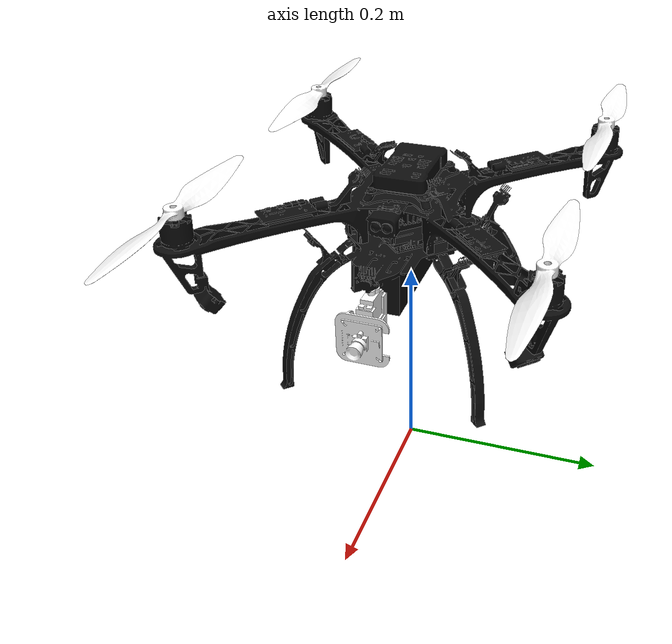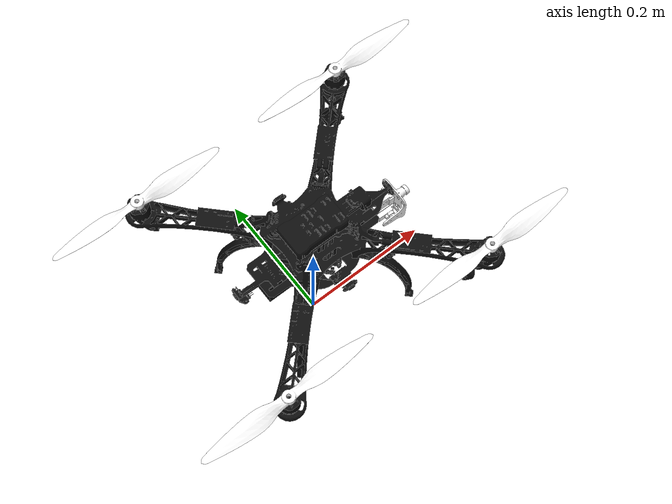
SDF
<sdf version="1.10">
 <world name="open_world">
  <physics name="1ms" type="ignore">
   <max_step_size>0.001</max_step_size>
   <real_time_factor>1</real_time_factor>
   <real_time_update_rate>1000</real_time_update_rate>
  </physics>
  <plugin name="gz::sim::systems::Physics" filename="gz-sim-physics-system"/>
  <plugin name="gz::sim::systems::Sensors" filename="gz-sim-sensors-system">
   <render_engine>ogre2</render_engine>
  </plugin>
  <plugin name="gz::sim::systems::UserCommands" filename="gz-sim-user-commands-system"/>
  <plugin name="gz::sim::systems::SceneBroadcaster" filename="gz-sim-scene-broadcaster-system"/>
  <plugin name="gz::sim::systems::Imu" filename="gz-sim-imu-system"/>
  <plugin name="gz::sim::systems::NavSat" filename="gz-sim-navsat-system"/>
  <scene>
   <ambient>1 1 1 1</ambient>
   <background>0.800000012 0.800000012 0.800000012 1</background>
   <shadows>0</shadows>
   <grid>false</grid>
   <origin_visual>false</origin_visual>
  </scene>
  <gravity>0 0 -9.8000000000000007</gravity>
  <magnetic_field>5.5644999999999998e-06 2.2875799999999999e-05 -4.2388400000000002e-05</magnetic_field>
  <atmosphere type="adiabatic"/>
  <light name="sun" type="directional">
   <pose>0 0 10 0 0 0</pose>
   <intensity>1</intensity>
   <direction>-0.5 0.10000000000000001 -0.90000000000000002</direction>
   <diffuse>0.800000012 0.800000012 0.800000012 1</diffuse>
   <specular>0.800000012 0.800000012 0.800000012 1</specular>
   <attenuation>
    <range>1000</range>
    <linear>0.01</linear>
    <constant>0.90000000000000002</constant>
    <quadratic>0.001</quadratic>
   </attenuation>
   <spot><inner_angle>0</inner_angle><outer_angle>0</outer_angle><falloff>0</falloff></spot>
  </light>
  <include><uri>model://kestrel_drone</uri></include>
 </world>
</sdf>

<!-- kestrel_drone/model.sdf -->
<sdf version="1.9">
    <model name='kestrel_drone'>
        <pose>0 0 0.25 0 0 0</pose>
        <link name='base_link'>
        <velocity_decay>
            <linear>0.0</linear>
            <angular>0.0</angular>
        </velocity_decay>
        <inertial>
            <pose>0.008 -0.0003 0.006 0 0 0</pose>
            <mass>1.6</mass>
            <inertia>
            <ixx>0.0055</ixx>
            <ixy>0</ixy>
            <ixz>0</ixz>
            <iyy>0.0067</iyy>
            <iyz>0</iyz>
            <izz>0.0099</izz>
            </inertia>
        </inertial>
        <collision name='base_link_collision'>
            <pose>0 0 0 0 0 0</pose>
            <geometry>
            <box>
                <size>0.358541 0.358541 0.212</size>
            </box>
            </geometry>
            <surface>
            <contact>
                <ode>
                <max_vel>100.0</max_vel>
                <min_depth>0.001</min_depth>
                </ode>
            </contact>
            <friction>
                <ode>
                <mu>100000.0</mu>
                <mu2>100000.0</mu2>
                </ode>
            </friction>
            </surface>
        </collision>
        <visual name='base_link_visual'>
            <pose>0 0 0 0 0 0</pose>
            <geometry>
                <mesh>
                    <scale>1 1 1</scale>
                    <uri>model://kestrel_drone/meshes/base_link.STL</uri>
                </mesh>
            </geometry>
            <material>
                <ambient>0.05 0.05 0.05</ambient>
                <diffuse>0.05 0.05 0.05</diffuse>
                <specular>1 1 1 1</specular>
                <pbr>
                    <metal>
                        <metalness>0.5</metalness>
                        <roughness>0.5</roughness>
                    </metal>
                </pbr>
            </material>
        </visual>
        </link>
        <joint name='CameraPt1-joint' type='revolute'>
        <pose relative_to='base_link'>0.1087 0 -0.051799999999999999 0 0 -0.016688999999999996</pose>
        <parent>base_link</parent>
        <child>CameraPt1</child>
        <axis>
            <xyz>0 0 1</xyz>
            <limit>
            <effort>1.4710000000000001</effort>
            <velocity>5.2359999999999998</velocity>
            <lower>0</lower>
            <upper>3.1415</upper>
            </limit>
            <dynamics>
                <spring_reference>0</spring_reference>
                <spring_stiffness>0</spring_stiffness>
            </dynamics>
        </axis>
        </joint>
        <link name='CameraPt1'>
        <pose relative_to='CameraPt1-joint'>0 0 0 0 0 0</pose>
        <inertial>
            <pose>-0.10077 -0.0019816999999999999 0.058075000000000002 0 0 0</pose>
            <mass>0.01</mass>
            <inertia>
            <ixx>0.0054891000000000002</ixx>
            <ixy>-1.2663000000000001e-05</ixy>
            <ixz>0.00018552999999999999</ixz>
            <iyy>0.0066689999999999996</iyy>
            <iyz>1.8978000000000001e-06</iyz>
            <izz>0.0098706999999999996</izz>
            </inertia>
        </inertial>
        <collision name='CameraPt1_collision'>
            <pose>0 0 0 0 0 0</pose>
            <geometry>
            <mesh>
                <scale>1 1 1</scale>
                <uri>model://kestrel_drone/meshes/CameraPt1.STL</uri>
            </mesh>
            </geometry>
        </collision>
        <visual name='CameraPt1_visual'>
            <pose>0 0 0 0 0 0</pose>
            <geometry>
            <mesh>
                <scale>1 1 1</scale>
                <uri>model://kestrel_drone/meshes/CameraPt1.STL</uri>
            </mesh>
            </geometry>
            <material>
                <diffuse>1 1 1 1</diffuse>
                <ambient>1 1 1 1</ambient>
                <pbr>
                    <metal>
                        <metalness>0.5</metalness>
                        <roughness>0.5</roughness>
                    </metal>
                </pbr>
            </material>
        </visual>
        </link>
        <joint name='CameraPt2-joint' type='revolute'>
        <pose relative_to='CameraPt1'>0.011849999999999999 0 0.0079000000000000008 0 0.0053803999999999996 0</pose>
        <parent>CameraPt1</parent>
        <child>CameraPt2</child>
        <axis>
            <xyz>0 -1 0</xyz>
            <limit>
            <effort>1.571</effort>
            <velocity>5.236</velocity>
            <lower>-1.5708</lower>
            <upper>0</upper>
            </limit>
            <dynamics>
            <spring_reference>0</spring_reference>
            <spring_stiffness>0</spring_stiffness>
            </dynamics>
        </axis>
        </joint>
        <link name='CameraPt2'>
        <pose relative_to='CameraPt2-joint'>0 0 0 0 0 0</pose>
        <inertial>
            <pose>-0.11289 -0.0019816999999999999 0.049568000000000001 0 0 0</pose>
            <mass>0.01</mass>
            <inertia>
            <ixx>0.0054872000000000002</ixx>
            <ixy>-1.2673e-05</ixy>
            <ixz>0.00016194000000000001</ixz>
            <iyy>0.0066689999999999996</iyy>
            <iyz>1.8296e-06</iyz>
            <izz>0.0098724999999999993</izz>
            </inertia>
        </inertial>
        <collision name='CameraPt2_collision'>
            <pose>0 0 0 0 0 0</pose>
            <geometry>
            <mesh>
                <scale>1 1 1</scale>
                <uri>model://kestrel_drone/meshes/CameraPt2.STL</uri>
            </mesh>
            </geometry>
        </collision>
        <visual name='CameraPt2_visual'>
            <pose>0 0 0 0 0 0</pose>
            <geometry>
            <mesh>
                <scale>1 1 1</scale>
                <uri>model://kestrel_drone/meshes/CameraPt2.STL</uri>
            </mesh>
            </geometry>
            <material>
                <diffuse>1 1 1 1</diffuse>
                <ambient>1 1 1 1</ambient>
                <pbr>
                    <metal>
                        <metalness>0.5</metalness>
                        <roughness>0.5</roughness>
                    </metal>
                </pbr>
            </material>
        </visual>
        <sensor name="camera" type="camera">
            <pose>0 0 0 0 0 0</pose>
            <camera>
            <horizontal_fov>2.0</horizontal_fov>
            <image>
                <width>640</width>
                <height>480</height>
            </image>
            <clip>
                <near>0.05</near>
                <far>15000</far>
            </clip>
            </camera>
            <always_on>1</always_on>
            <update_rate>10</update_rate>
            <visualize>1</visualize>
            <topic>/camera/rgb/image_raw</topic>

            <plugin filename="CameraZoomPlugin"
                name="CameraZoomPlugin">
            <max_zoom>125.0</max_zoom>
            <slew_rate>0.42514285714</slew_rate>
            </plugin>

            <plugin name="GstCameraPlugin"
                filename="GstCameraPlugin">
            <udp_host>127.0.0.1</udp_host>
            <udp_port>5600</udp_port>
            <use_basic_pipeline>true</use_basic_pipeline>
            <use_cuda>false</use_cuda>
            </plugin>

        </sensor>

        </link>
        <joint name='Prop1-joint' type='revolute'>
            <pose relative_to='base_link'>0.15846 -0.15891 0.055962 0 0 0</pose>
            <parent>base_link</parent>
            <child>Prop1</child>
            <axis>
                <xyz>0 0 1</xyz>
                <limit>
                    <lower>-Inf</lower>
                    <upper>Inf</upper>
                </limit>
                <dynamics>
                    <damping>0.005</damping>
                </dynamics>
            </axis>
            <physics>
                <ode>
                <implicit_spring_damper>1</implicit_spring_damper>
                </ode>
            </physics>
        </joint>
        <link name='Prop1'>
            <pose relative_to='Prop1-joint'>0 0 0 0 0 0</pose>
            <inertial>
                <pose>-0.0000001705 0.0094872 -0.000012556 0 0 0</pose>
                <mass>0.025</mass>
                <inertia>
                    <ixx>9.75e-06</ixx>
                    <ixy>0</ixy>
                    <ixz>0</ixz>
                    <iyy>0.000166704</iyy>
                    <iyz>0</iyz>
                    <izz>0.000167604</izz>
                </inertia>
            </inertial>
            <collision name='Prop1_collision'>
                <pose>0 0 0 0 0 0</pose>
                <geometry>
                    <cylinder>
                        <length>0.005</length>
                        <radius>0.1</radius>
                    </cylinder>
                </geometry>
                <surface>
                <contact>
                    <ode/>
                </contact>
                <friction>
                    <ode/>
                </friction>
                </surface>
            </collision>
            <visual name='Prop1_visual'>
                <pose>0 0 0 0 0 0</pose>
                <geometry>
                    <mesh>
                        <scale>1 1 1</scale>
                        <uri>model://kestrel_drone/meshes/Prop1.STL</uri>
                    </mesh>
                </geometry>
                <material>
                <diffuse>1 1 1 1</diffuse>
                <ambient>1 1 1 1</ambient>
                <pbr>
                    <metal>
                        <metalness>0.5</metalness>
                        <roughness>0.5</roughness>
                    </metal>
                </pbr>
                </material>
            </visual>
            <gravity>1</gravity>
            <velocity_decay/>
            <self_collide>0</self_collide>
        </link>
        <joint name='Prop2-joint' type='revolute'>
            <pose relative_to='base_link'>-0.15846 0.15891 0.055962 0 0 0</pose>
            <parent>base_link</parent>
            <child>Prop2</child>
            <axis>
                <xyz>0 0 1</xyz>
                <limit>
                    <lower>-Inf</lower>
                    <upper>Inf</upper>
                </limit>
                <dynamics>
                    <damping>0.005</damping>
                </dynamics>
            </axis>
            <physics>
                <ode>
                <implicit_spring_damper>1</implicit_spring_damper>
                </ode>
            </physics>
        </joint>
        <link name='Prop2'>
            <pose relative_to='Prop2-joint'>0 0 0 0 0 0</pose>
            <inertial>
                <pose>-0.0000001705 0.0094872 -0.000012556 0 0 0</pose>
                <mass>0.025</mass>
                <inertia>
                    <ixx>9.75e-06</ixx>
                    <ixy>0</ixy>
                    <ixz>0</ixz>
                    <iyy>0.000166704</iyy>
                    <iyz>0</iyz>
                    <izz>0.000167604</izz>
                </inertia>
            </inertial>
            <collision name='Prop2_collision'>
                <pose>0 0 0 0 0 0</pose>
                <geometry>
                    <cylinder>
                        <length>0.005</length>
                        <radius>0.1</radius>
                    </cylinder>
                </geometry>
                <surface>
                <contact>
                    <ode/>
                </contact>
                <friction>
                    <ode/>
                </friction>
                </surface>
            </collision>
            <visual name='Prop2_visual'>
                <pose>0 0 0 0 0 0</pose>
                <geometry>
                <mesh>
                    <scale>1 1 1</scale>
                    <uri>model://kestrel_drone/meshes/Prop2.STL</uri>
                </mesh>
                </geometry>
                <material>
                <diffuse>1 1 1 1</diffuse>
                <ambient>1 1 1 1</ambient>
                <pbr>
                    <metal>
                        <metalness>0.5</metalness>
                        <roughness>0.5</roughness>
                    </metal>
                </pbr>
                </material>
            </visual>
            <gravity>1</gravity>
            <velocity_decay/>
            <self_collide>0</self_collide>
        </link>
        <joint name='Prop3-joint' type='revolute'>
            <pose relative_to='base_link'>0.15891 0.15846 0.055962 0 0 0</pose>
            <parent>base_link</parent>
            <child>Prop3</child>
            <axis>
                <xyz>0 0 1</xyz>
                <limit>
                    <lower>-Inf</lower>
                    <upper>Inf</upper>
                </limit>
                <dynamics>
                    <damping>0.005</damping>
                </dynamics>
            </axis>
            <physics>
                <ode>
                <implicit_spring_damper>1</implicit_spring_damper>
                </ode>
            </physics>
        </joint>
        <link name='Prop3'>
            <pose relative_to='Prop3-joint'>0 0 0 0 0 0</pose>
            <inertial>
                <pose>-0.0000001705 0.0094872 -0.000012556 0 0 0</pose>
                <mass>0.018153</mass>
                <mass>0.025</mass>
                <inertia>
                    <ixx>9.75e-06</ixx>
                    <ixy>0</ixy>
                    <ixz>0</ixz>
                    <iyy>0.000166704</iyy>
                    <iyz>0</iyz>
                    <izz>0.000167604</izz>
                </inertia>
            </inertial>
            <collision name='Prop3_collision'>
                <pose>0 0 0 0 0 0</pose>
                <geometry>
                    <cylinder>
                        <length>0.005</length>
                        <radius>0.1</radius>
                    </cylinder>
                </geometry>
                <surface>
                <contact>
                    <ode/>
                </contact>
                <friction>
                    <ode/>
                </friction>
                </surface>
            </collision>
            <visual name='Prop3_visual'>
                <pose>0 0 0 0 0 0</pose>
                <geometry>
                    <mesh>
                        <scale>1 1 1</scale>
                        <uri>model://kestrel_drone/meshes/Prop3.STL</uri>
                    </mesh>
                </geometry>
                <material>
                <diffuse>1 1 1 1</diffuse>
                <ambient>1 1 1 1</ambient>
                <pbr>
                    <metal>
                        <metalness>0.5</metalness>
                        <roughness>0.5</roughness>
                    </metal>
                </pbr>
                </material>
            </visual>
            <gravity>1</gravity>
            <velocity_decay/>
            <self_collide>0</self_collide>
        </link>
        <joint name='Prop4-joint' type='revolute'>
            <pose relative_to='base_link'>-0.15891 -0.15846 0.055962 0 0 0</pose>
            <parent>base_link</parent>
            <child>Prop4</child>
            <axis>
                <xyz>0 0 1</xyz>
                <limit>
                    <lower>-Inf</lower>
                    <upper>Inf</upper>
                </limit>
                <dynamics>
                    <damping>0.005</damping>
                </dynamics>
            </axis>
            <physics>
                <ode>
                <implicit_spring_damper>1</implicit_spring_damper>
                </ode>
            </physics>
        </joint>
        <link name='Prop4'>
        <pose relative_to='Prop4-joint'>0 0 0 0 0 0</pose>
        <inertial>
            <pose>-0.0000001705 0.0094872 -0.000012556 0 0 0</pose>
            <mass>0.025</mass>
            <inertia>
                <ixx>9.75e-06</ixx>
                <ixy>0</ixy>
                <ixz>0</ixz>
                <iyy>0.000166704</iyy>
                <iyz>0</iyz>
                <izz>0.000167604</izz>
            </inertia>
        </inertial>
        <collision name='Prop4_collision'>
            <pose>0 0 0 0 0 0</pose>
            <geometry>
                <cylinder>
                    <length>0.005</length>
                    <radius>0.1</radius>
                </cylinder>
            </geometry>
            <surface>
            <contact>
                <ode/>
            </contact>
            <friction>
                <ode/>
            </friction>
            </surface>
        </collision>
        <visual name='Prop4_visual'>
            <pose>0 0 0 0 0 0</pose>
            <geometry>
                <mesh>
                    <scale>1 1 1</scale>
                    <uri>model://kestrel_drone/meshes/Prop4.STL</uri>
                </mesh>
            </geometry>
            <material>
            <diffuse>1 1 1 1</diffuse>
            <ambient>1 1 1 1</ambient>
            <pbr>
                <metal>
                    <metalness>0.5</metalness>
                    <roughness>0.5</roughness>
                </metal>
            </pbr>
            </material>
        </visual>
        <gravity>1</gravity>
        <velocity_decay/>
        <self_collide>0</self_collide>
        </link>

        <link name='imu_link'>
            <inertial>
                <pose>0 0 0 0 0 0</pose>
                <mass>0.15</mass>
                <inertia>
                <ixx>0.00001</ixx>
                <ixy>0</ixy>
                <ixz>0</ixz>
                <iyy>0.00002</iyy>
                <iyz>0</iyz>
                <izz>0.00002</izz>
                </inertia>
            </inertial>
            <sensor name="imu_sensor" type="imu">
                <pose degrees="true">0 0 0 180 0 0</pose>
                <always_on>1</always_on>
                <update_rate>1000.0</update_rate>
            </sensor>
        </link>
        <joint name='imu_joint' type='revolute'>
            <child>imu_link</child>
            <parent>base_link</parent>
            <axis>
                <xyz>0 0 1</xyz>
                <limit>
                <lower>0</lower>
                <upper>0</upper>
                <effort>0</effort>
                <velocity>0</velocity>
                </limit>
                <dynamics>
                <damping>1.0</damping>
                </dynamics>
            </axis>
        </joint>

        <!-- PLUGINS -->
        <plugin filename="gz-sim-joint-state-publisher-system"
        name="gz::sim::systems::JointStatePublisher">
        </plugin>
        <plugin filename="gz-sim-lift-drag-system"
            name="gz::sim::systems::LiftDrag">
        <a0>0.3</a0>
        <alpha_stall>1.4</alpha_stall>
        <cla>4.2500</cla>
        <cda>0.10</cda>
        <cma>0.0</cma>
        <cla_stall>-0.025</cla_stall>
        <cda_stall>0.0</cda_stall>
        <cma_stall>0.0</cma_stall>
        <area>0.002</area>
        <air_density>1.2041</air_density>
        <cp>0.127 0 0</cp>
        <forward>0 1 0</forward>
        <upward>0 0 1</upward>
        <link_name>Prop1</link_name>
        </plugin>
        <plugin filename="gz-sim-lift-drag-system"
            name="gz::sim::systems::LiftDrag">
        <a0>0.3</a0>
        <alpha_stall>1.4</alpha_stall>
        <cla>4.2500</cla>
        <cda>0.10</cda>
        <cma>0.0</cma>
        <cla_stall>-0.025</cla_stall>
        <cda_stall>0.0</cda_stall>
        <cma_stall>0.0</cma_stall>
        <area>0.002</area>
        <air_density>1.2041</air_density>
        <cp>-0.127 0 0</cp>
        <forward>0 -1 0</forward>
        <upward>0 0 1</upward>
        <link_name>Prop1</link_name>
        </plugin>

        <plugin filename="gz-sim-lift-drag-system"
            name="gz::sim::systems::LiftDrag">
        <a0>0.3</a0>
        <alpha_stall>1.4</alpha_stall>
        <cla>4.2500</cla>
        <cda>0.10</cda>
        <cma>0.0</cma>
        <cla_stall>-0.025</cla_stall>
        <cda_stall>0.0</cda_stall>
        <cma_stall>0.0</cma_stall>
        <area>0.002</area>
        <air_density>1.2041</air_density>
        <cp>0.127 0 0</cp>
        <forward>0 1 0</forward>
        <upward>0 0 1</upward>
        <link_name>Prop2</link_name>
        </plugin>
        <plugin filename="gz-sim-lift-drag-system"
            name="gz::sim::systems::LiftDrag">
        <a0>0.3</a0>
        <alpha_stall>1.4</alpha_stall>
        <cla>4.2500</cla>
        <cda>0.10</cda>
        <cma>0.0</cma>
        <cla_stall>-0.025</cla_stall>
        <cda_stall>0.0</cda_stall>
        <cma_stall>0.0</cma_stall>
        <area>0.002</area>
        <air_density>1.2041</air_density>
        <cp>-0.127 0 0</cp>
        <forward>0 -1 0</forward>
        <upward>0 0 1</upward>
        <link_name>Prop2</link_name>
        </plugin>

        <plugin filename="gz-sim-lift-drag-system"
            name="gz::sim::systems::LiftDrag">
        <a0>0.3</a0>
        <alpha_stall>1.4</alpha_stall>
        <cla>4.2500</cla>
        <cda>0.10</cda>
        <cma>0.0</cma>
        <cla_stall>-0.025</cla_stall>
        <cda_stall>0.0</cda_stall>
        <cma_stall>0.0</cma_stall>
        <area>0.002</area>
        <air_density>1.2041</air_density>
        <cp>0.127 0 0</cp>
        <forward>0 -1 0</forward>
        <upward>0 0 1</upward>
        <link_name>Prop3</link_name>
        </plugin>
        <plugin filename="gz-sim-lift-drag-system"
            name="gz::sim::systems::LiftDrag">
        <a0>0.3</a0>
        <alpha_stall>1.4</alpha_stall>
        <cla>4.2500</cla>
        <cda>0.10</cda>
        <cma>0.0</cma>
        <cla_stall>-0.025</cla_stall>
        <cda_stall>0.0</cda_stall>
        <cma_stall>0.0</cma_stall>
        <area>0.002</area>
        <air_density>1.2041</air_density>
        <cp>-0.127 0 0</cp>
        <forward>0 1 0</forward>
        <upward>0 0 1</upward>
        <link_name>Prop3</link_name>
        </plugin>

        <plugin filename="gz-sim-lift-drag-system"
            name="gz::sim::systems::LiftDrag">
        <a0>0.3</a0>
        <alpha_stall>1.4</alpha_stall>
        <cla>4.2500</cla>
        <cda>0.10</cda>
        <cma>0.0</cma>
        <cla_stall>-0.025</cla_stall>
        <cda_stall>0.0</cda_stall>
        <cma_stall>0.0</cma_stall>
        <area>0.002</area>
        <air_density>1.2041</air_density>
        <cp>0.127 0 0</cp>
        <forward>0 -1 0</forward>
        <upward>0 0 1</upward>
        <link_name>Prop4</link_name>
        </plugin>
        <plugin filename="gz-sim-lift-drag-system"
            name="gz::sim::systems::LiftDrag">
        <a0>0.3</a0>
        <alpha_stall>1.4</alpha_stall>
        <cla>4.2500</cla>
        <cda>0.10</cda>
        <cma>0.0</cma>
        <cla_stall>-0.025</cla_stall>
        <cda_stall>0.0</cda_stall>
        <cma_stall>0.0</cma_stall>
        <area>0.002</area>
        <air_density>1.2041</air_density>
        <cp>-0.127 0 0</cp>
        <forward>0 1 0</forward>
        <upward>0 0 1</upward>
        <link_name>Prop4</link_name>
        </plugin>

        <plugin filename="gz-sim-apply-joint-force-system"
        name="gz::sim::systems::ApplyJointForce">
        <joint_name>Prop1-joint</joint_name>
        </plugin>
        <plugin filename="gz-sim-apply-joint-force-system"
        name="gz::sim::systems::ApplyJointForce">
        <joint_name>Prop2-joint</joint_name>
        </plugin>
        <plugin filename="gz-sim-apply-joint-force-system"
        name="gz::sim::systems::ApplyJointForce">
        <joint_name>Prop3-joint</joint_name>
        </plugin>
        <plugin filename="gz-sim-apply-joint-force-system"
        name="gz::sim::systems::ApplyJointForce">
        <joint_name>Prop4-joint</joint_name>
        </plugin>

        <plugin name="ArduPilotPlugin"
        filename="ArduPilotPlugin">
        <!-- Port settings -->
        <fdm_addr>127.0.0.1</fdm_addr>
        <fdm_port_in>9002</fdm_port_in>
        <connectionTimeoutMaxCount>5</connectionTimeoutMaxCount>
        <lock_step>1</lock_step>
        <have_32_channels>0</have_32_channels>

        <!-- Frame conventions
            Require by ArduPilot: change model and gazebo from XYZ to XY-Z coordinates
        -->
        <modelXYZToAirplaneXForwardZDown degrees="true">0 0 0 180 0 0</modelXYZToAirplaneXForwardZDown>
        <gazeboXYZToNED degrees="true">0 0 0 180 0 90</gazeboXYZToNED>

        <!-- Sensors -->
        <imuName>imu_sensor</imuName>

        <control channel="0">
            <jointName>Prop1-joint</jointName>
            <useForce>1</useForce>
            <multiplier>838</multiplier>
            <offset>0</offset>
            <servo_min>1100</servo_min>
            <servo_max>1900</servo_max>
            <type>VELOCITY</type>
            <p_gain>0.20</p_gain>
            <i_gain>0.0</i_gain>
            <d_gain>0.0</d_gain>
            <i_max>0</i_max>
            <i_min>0</i_min>
            <cmd_max>3.50</cmd_max>
            <cmd_min>-3.50</cmd_min>
            <controlVelocitySlowdownSim>1</controlVelocitySlowdownSim>
        </control>

        <control channel="1">
            <jointName>Prop2-joint</jointName>
            <useForce>1</useForce>
            <multiplier>838</multiplier>
            <offset>0</offset>
            <servo_min>1100</servo_min>
            <servo_max>1900</servo_max>
            <type>VELOCITY</type>
            <p_gain>0.20</p_gain>
            <i_gain>0.0</i_gain>
            <d_gain>0.0</d_gain>
            <i_max>0</i_max>
            <i_min>0</i_min>
            <cmd_max>3.50</cmd_max>
            <cmd_min>-3.50</cmd_min>
            <controlVelocitySlowdownSim>1</controlVelocitySlowdownSim>
        </control>

        <control channel="2">
            <jointName>Prop3-joint</jointName>
            <useForce>1</useForce>
            <multiplier>-838</multiplier>
            <offset>0</offset>
            <servo_min>1100</servo_min>
            <servo_max>1900</servo_max>
            <type>VELOCITY</type>
            <p_gain>0.20</p_gain>
            <i_gain>0.0</i_gain>
            <d_gain>0.0</d_gain>
            <i_max>0</i_max>
            <i_min>0</i_min>
            <cmd_max>3.50</cmd_max>
            <cmd_min>-3.50</cmd_min>
            <controlVelocitySlowdownSim>1</controlVelocitySlowdownSim>
        </control>

        <control channel="3">
            <jointName>Prop4-joint</jointName>
            <useForce>1</useForce>
            <multiplier>-838</multiplier>
            <offset>0</offset>
            <servo_min>1100</servo_min>
            <servo_max>1900</servo_max>
            <type>VELOCITY</type>
            <p_gain>0.20</p_gain>
            <i_gain>0.00</i_gain>
            <d_gain>0.0</d_gain>
            <i_max>0</i_max>
            <i_min>0</i_min>
            <cmd_max>3.50</cmd_max>
            <cmd_min>-3.50</cmd_min>
            <controlVelocitySlowdownSim>1</controlVelocitySlowdownSim>
        </control>

        </plugin>
    </model>
</sdf>
